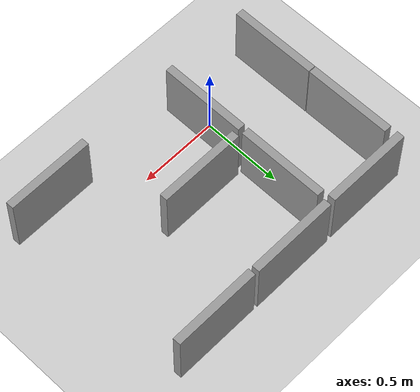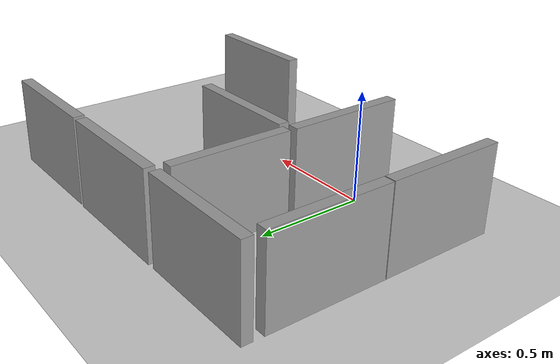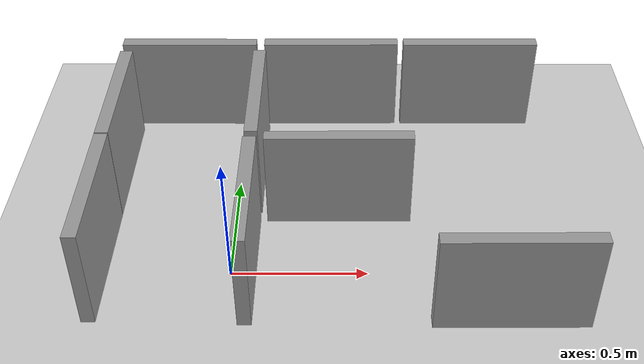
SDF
<sdf version="1.6">
 <world name="default">
  <model name="ground_plane">
   <static>1</static>
   <link name="link">
    <collision name="collision">
     <geometry><plane><normal>0 0 1</normal><size>100 100</size></plane></geometry>
     <surface>
      <contact><collide_bitmask>65535</collide_bitmask></contact>
      <friction><ode><mu>100</mu><mu2>50</mu2></ode></friction>
     </surface>
    </collision>
    <visual name="visual">
     <cast_shadows>0</cast_shadows>
     <geometry><plane><normal>0 0 1</normal><size>100 100</size></plane></geometry>
     <material>
      <script><uri>file://media/materials/scripts/gazebo.material</uri><name>Gazebo/Grey</name></script>
     </material>
    </visual>
   </link>
  </model>
  <model name="Maze_unit_clone_0">
   <link name="link">
    <inertial>
     <mass>1</mass>
     <inertia>
      <ixx>0.166667</ixx>
      <ixy>0</ixy>
      <ixz>0</ixz>
      <iyy>0.166667</iyy>
      <iyz>0</iyz>
      <izz>0.166667</izz>
     </inertia>
    </inertial>
    <pose>-0.463146 -0.530916 -0 0 -0 0</pose>
    <visual name="visual">
     <geometry><box><size>0.05 0.55 0.4</size></box></geometry>
     <material>
      <script><name>Gazebo/Grey</name><uri>file://media/materials/scripts/gazebo.material</uri></script>
      <shader type="vertex"><normal_map>__default__</normal_map></shader>
      <ambient>0.3 0.3 0.3 1</ambient>
      <diffuse>0.7 0.7 0.7 1</diffuse>
      <specular>0.01 0.01 0.01 1</specular>
      <emissive>0 0 0 1</emissive>
     </material>
    </visual>
    <collision name="collision">
     <geometry><box><size>0.05 0.55 0.4</size></box></geometry>
     <surface>
      <friction>
       <ode><mu>1</mu><mu2>1</mu2><fdir1>0 0 0</fdir1><slip1>0</slip1><slip2>0</slip2></ode>
       <torsional>
        <coefficient>1</coefficient>
        <patch_radius>0</patch_radius>
        <surface_radius>0</surface_radius>
        <use_patch_radius>1</use_patch_radius>
        <ode><slip>0</slip></ode>
       </torsional>
      </friction>
      <bounce><restitution_coefficient>0</restitution_coefficient><threshold>1e+06</threshold></bounce>
      <contact>
       <collide_without_contact>0</collide_without_contact>
       <collide_without_contact_bitmask>1</collide_without_contact_bitmask>
       <collide_bitmask>1</collide_bitmask>
       <ode>
        <soft_cfm>0</soft_cfm>
        <soft_erp>0.2</soft_erp>
        <kp>1e+13</kp>
        <kd>1</kd>
        <max_vel>0.01</max_vel>
        <min_depth>0</min_depth>
       </ode>
       <bullet>
        <split_impulse>1</split_impulse>
        <split_impulse_penetration_threshold>-0.01</split_impulse_penetration_threshold>
        <soft_cfm>0</soft_cfm>
        <soft_erp>0.2</soft_erp>
        <kp>1e+13</kp>
        <kd>1</kd>
       </bullet>
      </contact>
     </surface>
    </collision>
   </link>
   <static>1</static>
   <pose>-0.010054 0.572677 0.2 1e-06 1e-06 -0.00027</pose>
  </model>
  <model name="Maze_unit_clone_1">
   <link name="link">
    <inertial>
     <mass>1</mass>
     <inertia>
      <ixx>0.166667</ixx>
      <ixy>0</ixy>
      <ixz>0</ixz>
      <iyy>0.166667</iyy>
      <iyz>0</iyz>
      <izz>0.166667</izz>
     </inertia>
    </inertial>
    <pose>-0.463146 -0.530916 -0 0 -0 0</pose>
    <visual name="visual">
     <geometry><box><size>0.05 0.55 0.4</size></box></geometry>
     <material>
      <script><name>Gazebo/Grey</name><uri>file://media/materials/scripts/gazebo.material</uri></script>
      <shader type="vertex"><normal_map>__default__</normal_map></shader>
      <ambient>0.3 0.3 0.3 1</ambient>
      <diffuse>0.7 0.7 0.7 1</diffuse>
      <specular>0.01 0.01 0.01 1</specular>
      <emissive>0 0 0 1</emissive>
     </material>
    </visual>
    <collision name="collision">
     <geometry><box><size>0.05 0.55 0.4</size></box></geometry>
     <surface>
      <friction>
       <ode><mu>1</mu><mu2>1</mu2><fdir1>0 0 0</fdir1><slip1>0</slip1><slip2>0</slip2></ode>
       <torsional>
        <coefficient>1</coefficient>
        <patch_radius>0</patch_radius>
        <surface_radius>0</surface_radius>
        <use_patch_radius>1</use_patch_radius>
        <ode><slip>0</slip></ode>
       </torsional>
      </friction>
      <bounce><restitution_coefficient>0</restitution_coefficient><threshold>1e+06</threshold></bounce>
      <contact>
       <collide_without_contact>0</collide_without_contact>
       <collide_without_contact_bitmask>1</collide_without_contact_bitmask>
       <collide_bitmask>1</collide_bitmask>
       <ode>
        <soft_cfm>0</soft_cfm>
        <soft_erp>0.2</soft_erp>
        <kp>1e+13</kp>
        <kd>1</kd>
        <max_vel>0.01</max_vel>
        <min_depth>0</min_depth>
       </ode>
       <bullet>
        <split_impulse>1</split_impulse>
        <split_impulse_penetration_threshold>-0.01</split_impulse_penetration_threshold>
        <soft_cfm>0</soft_cfm>
        <soft_erp>0.2</soft_erp>
        <kp>1e+13</kp>
        <kd>1</kd>
       </bullet>
      </contact>
     </surface>
    </collision>
   </link>
   <static>1</static>
   <pose>-0.010091 1.1268 0.2 0 0 -0.000544</pose>
  </model>
  <model name="Maze_unit_clone_3">
   <link name="link">
    <inertial>
     <mass>1</mass>
     <inertia>
      <ixx>0.166667</ixx>
      <ixy>0</ixy>
      <ixz>0</ixz>
      <iyy>0.166667</iyy>
      <iyz>0</iyz>
      <izz>0.166667</izz>
     </inertia>
    </inertial>
    <pose>-0.463146 -0.530916 -0 0 -0 0</pose>
    <visual name="visual">
     <geometry><box><size>0.05 0.55 0.4</size></box></geometry>
     <material>
      <script><name>Gazebo/Grey</name><uri>file://media/materials/scripts/gazebo.material</uri></script>
      <shader type="vertex"><normal_map>__default__</normal_map></shader>
      <ambient>0.3 0.3 0.3 1</ambient>
      <diffuse>0.7 0.7 0.7 1</diffuse>
      <specular>0.01 0.01 0.01 1</specular>
      <emissive>0 0 0 1</emissive>
     </material>
    </visual>
    <collision name="collision">
     <geometry><box><size>0.05 0.55 0.4</size></box></geometry>
     <surface>
      <friction>
       <ode><mu>1</mu><mu2>1</mu2><fdir1>0 0 0</fdir1><slip1>0</slip1><slip2>0</slip2></ode>
       <torsional>
        <coefficient>1</coefficient>
        <patch_radius>0</patch_radius>
        <surface_radius>0</surface_radius>
        <use_patch_radius>1</use_patch_radius>
        <ode><slip>0</slip></ode>
       </torsional>
      </friction>
      <bounce><restitution_coefficient>0</restitution_coefficient><threshold>1e+06</threshold></bounce>
      <contact>
       <collide_without_contact>0</collide_without_contact>
       <collide_without_contact_bitmask>1</collide_without_contact_bitmask>
       <collide_bitmask>1</collide_bitmask>
       <ode>
        <soft_cfm>0</soft_cfm>
        <soft_erp>0.2</soft_erp>
        <kp>1e+13</kp>
        <kd>1</kd>
        <max_vel>0.01</max_vel>
        <min_depth>0</min_depth>
       </ode>
       <bullet>
        <split_impulse>1</split_impulse>
        <split_impulse_penetration_threshold>-0.01</split_impulse_penetration_threshold>
        <soft_cfm>0</soft_cfm>
        <soft_erp>0.2</soft_erp>
        <kp>1e+13</kp>
        <kd>1</kd>
       </bullet>
      </contact>
     </surface>
    </collision>
   </link>
   <static>1</static>
   <pose>0.530974 0.559352 0.2 0 -0 0.000106</pose>
  </model>
  <model name="Maze_unit_clone_4">
   <link name="link">
    <inertial>
     <mass>1</mass>
     <inertia>
      <ixx>0.166667</ixx>
      <ixy>0</ixy>
      <ixz>0</ixz>
      <iyy>0.166667</iyy>
      <iyz>0</iyz>
      <izz>0.166667</izz>
     </inertia>
    </inertial>
    <pose>-0.463146 -0.530916 -0 0 -0 0</pose>
    <visual name="visual">
     <geometry><box><size>0.05 0.55 0.4</size></box></geometry>
     <material>
      <script><name>Gazebo/Grey</name><uri>file://media/materials/scripts/gazebo.material</uri></script>
      <shader type="vertex"><normal_map>__default__</normal_map></shader>
      <ambient>0.3 0.3 0.3 1</ambient>
      <diffuse>0.7 0.7 0.7 1</diffuse>
      <specular>0.01 0.01 0.01 1</specular>
      <emissive>0 0 0 1</emissive>
     </material>
    </visual>
    <collision name="collision">
     <geometry><box><size>0.05 0.55 0.4</size></box></geometry>
     <surface>
      <friction>
       <ode><mu>1</mu><mu2>1</mu2><fdir1>0 0 0</fdir1><slip1>0</slip1><slip2>0</slip2></ode>
       <torsional>
        <coefficient>1</coefficient>
        <patch_radius>0</patch_radius>
        <surface_radius>0</surface_radius>
        <use_patch_radius>1</use_patch_radius>
        <ode><slip>0</slip></ode>
       </torsional>
      </friction>
      <bounce><restitution_coefficient>0</restitution_coefficient><threshold>1e+06</threshold></bounce>
      <contact>
       <collide_without_contact>0</collide_without_contact>
       <collide_without_contact_bitmask>1</collide_without_contact_bitmask>
       <collide_bitmask>1</collide_bitmask>
       <ode>
        <soft_cfm>0</soft_cfm>
        <soft_erp>0.2</soft_erp>
        <kp>1e+13</kp>
        <kd>1</kd>
        <max_vel>0.01</max_vel>
        <min_depth>0</min_depth>
       </ode>
       <bullet>
        <split_impulse>1</split_impulse>
        <split_impulse_penetration_threshold>-0.01</split_impulse_penetration_threshold>
        <soft_cfm>0</soft_cfm>
        <soft_erp>0.2</soft_erp>
        <kp>1e+13</kp>
        <kd>1</kd>
       </bullet>
      </contact>
     </surface>
    </collision>
   </link>
   <static>1</static>
   <pose>0.53227 1.1388 0.199993 -9e-06 -0 0.001029</pose>
  </model>
  <model name="Maze_unit_clone_5_clone_3">
   <link name="link">
    <inertial>
     <mass>1</mass>
     <inertia>
      <ixx>0.166667</ixx>
      <ixy>0</ixy>
      <ixz>0</ixz>
      <iyy>0.166667</iyy>
      <iyz>0</iyz>
      <izz>0.166667</izz>
     </inertia>
    </inertial>
    <pose>-0.463146 -0.530916 -0 0 -0 0</pose>
    <visual name="visual">
     <geometry><box><size>0.05 0.55 0.4</size></box></geometry>
     <material>
      <script><name>Gazebo/Grey</name><uri>file://media/materials/scripts/gazebo.material</uri></script>
      <shader type="vertex"><normal_map>__default__</normal_map></shader>
      <ambient>0.3 0.3 0.3 1</ambient>
      <diffuse>0.7 0.7 0.7 1</diffuse>
      <specular>0.01 0.01 0.01 1</specular>
      <emissive>0 0 0 1</emissive>
     </material>
    </visual>
    <collision name="collision">
     <geometry><box><size>0.05 0.55 0.4</size></box></geometry>
     <surface>
      <friction>
       <ode><mu>1</mu><mu2>1</mu2><fdir1>0 0 0</fdir1><slip1>0</slip1><slip2>0</slip2></ode>
       <torsional>
        <coefficient>1</coefficient>
        <patch_radius>0</patch_radius>
        <surface_radius>0</surface_radius>
        <use_patch_radius>1</use_patch_radius>
        <ode><slip>0</slip></ode>
       </torsional>
      </friction>
      <bounce><restitution_coefficient>0</restitution_coefficient><threshold>1e+06</threshold></bounce>
      <contact>
       <collide_without_contact>0</collide_without_contact>
       <collide_without_contact_bitmask>1</collide_without_contact_bitmask>
       <collide_bitmask>1</collide_bitmask>
       <ode>
        <soft_cfm>0</soft_cfm>
        <soft_erp>0.2</soft_erp>
        <kp>1e+13</kp>
        <kd>1</kd>
        <max_vel>0.01</max_vel>
        <min_depth>0</min_depth>
       </ode>
       <bullet>
        <split_impulse>1</split_impulse>
        <split_impulse_penetration_threshold>-0.01</split_impulse_penetration_threshold>
        <soft_cfm>0</soft_cfm>
        <soft_erp>0.2</soft_erp>
        <kp>1e+13</kp>
        <kd>1</kd>
       </bullet>
      </contact>
     </surface>
    </collision>
   </link>
   <static>1</static>
   <pose>-0.752801 1.40494 0.2 0 1e-06 1.57111</pose>
  </model>
  <model name="Maze_unit_clone_5_clone_4">
   <link name="link">
    <inertial>
     <mass>1</mass>
     <inertia>
      <ixx>0.166667</ixx>
      <ixy>0</ixy>
      <ixz>0</ixz>
      <iyy>0.166667</iyy>
      <iyz>0</iyz>
      <izz>0.166667</izz>
     </inertia>
    </inertial>
    <pose>-0.463146 -0.530916 -0 0 -0 0</pose>
    <visual name="visual">
     <geometry><box><size>0.05 0.55 0.4</size></box></geometry>
     <material>
      <script><name>Gazebo/Grey</name><uri>file://media/materials/scripts/gazebo.material</uri></script>
      <shader type="vertex"><normal_map>__default__</normal_map></shader>
      <ambient>0.3 0.3 0.3 1</ambient>
      <diffuse>0.7 0.7 0.7 1</diffuse>
      <specular>0.01 0.01 0.01 1</specular>
      <emissive>0 0 0 1</emissive>
     </material>
    </visual>
    <collision name="collision">
     <geometry><box><size>0.05 0.55 0.4</size></box></geometry>
     <surface>
      <friction>
       <ode><mu>1</mu><mu2>1</mu2><fdir1>0 0 0</fdir1><slip1>0</slip1><slip2>0</slip2></ode>
       <torsional>
        <coefficient>1</coefficient>
        <patch_radius>0</patch_radius>
        <surface_radius>0</surface_radius>
        <use_patch_radius>1</use_patch_radius>
        <ode><slip>0</slip></ode>
       </torsional>
      </friction>
      <bounce><restitution_coefficient>0</restitution_coefficient><threshold>1e+06</threshold></bounce>
      <contact>
       <collide_without_contact>0</collide_without_contact>
       <collide_without_contact_bitmask>1</collide_without_contact_bitmask>
       <collide_bitmask>1</collide_bitmask>
       <ode>
        <soft_cfm>0</soft_cfm>
        <soft_erp>0.2</soft_erp>
        <kp>1e+13</kp>
        <kd>1</kd>
        <max_vel>0.01</max_vel>
        <min_depth>0</min_depth>
       </ode>
       <bullet>
        <split_impulse>1</split_impulse>
        <split_impulse_penetration_threshold>-0.01</split_impulse_penetration_threshold>
        <soft_cfm>0</soft_cfm>
        <soft_erp>0.2</soft_erp>
        <kp>1e+13</kp>
        <kd>1</kd>
       </bullet>
      </contact>
     </surface>
    </collision>
   </link>
   <static>1</static>
   <pose>-0.172312 1.40639 0.2 0 -0 1.57606</pose>
  </model>
  <model name="Maze_unit_clone_5_clone_5">
   <link name="link">
    <inertial>
     <mass>1</mass>
     <inertia>
      <ixx>0.166667</ixx>
      <ixy>0</ixy>
      <ixz>0</ixz>
      <iyy>0.166667</iyy>
      <iyz>0</iyz>
      <izz>0.166667</izz>
     </inertia>
    </inertial>
    <pose>-0.463146 -0.530916 -0 0 -0 0</pose>
    <visual name="visual">
     <geometry><box><size>0.05 0.55 0.4</size></box></geometry>
     <material>
      <script><name>Gazebo/Grey</name><uri>file://media/materials/scripts/gazebo.material</uri></script>
      <shader type="vertex"><normal_map>__default__</normal_map></shader>
      <ambient>0.3 0.3 0.3 1</ambient>
      <diffuse>0.7 0.7 0.7 1</diffuse>
      <specular>0.01 0.01 0.01 1</specular>
      <emissive>0 0 0 1</emissive>
     </material>
    </visual>
    <collision name="collision">
     <geometry><box><size>0.05 0.55 0.4</size></box></geometry>
     <surface>
      <friction>
       <ode><mu>1</mu><mu2>1</mu2><fdir1>0 0 0</fdir1><slip1>0</slip1><slip2>0</slip2></ode>
       <torsional>
        <coefficient>1</coefficient>
        <patch_radius>0</patch_radius>
        <surface_radius>0</surface_radius>
        <use_patch_radius>1</use_patch_radius>
        <ode><slip>0</slip></ode>
       </torsional>
      </friction>
      <bounce><restitution_coefficient>0</restitution_coefficient><threshold>1e+06</threshold></bounce>
      <contact>
       <collide_without_contact>0</collide_without_contact>
       <collide_without_contact_bitmask>1</collide_without_contact_bitmask>
       <collide_bitmask>1</collide_bitmask>
       <ode>
        <soft_cfm>0</soft_cfm>
        <soft_erp>0.2</soft_erp>
        <kp>1e+13</kp>
        <kd>1</kd>
        <max_vel>0.01</max_vel>
        <min_depth>0</min_depth>
       </ode>
       <bullet>
        <split_impulse>1</split_impulse>
        <split_impulse_penetration_threshold>-0.01</split_impulse_penetration_threshold>
        <soft_cfm>0</soft_cfm>
        <soft_erp>0.2</soft_erp>
        <kp>1e+13</kp>
        <kd>1</kd>
       </bullet>
      </contact>
     </surface>
    </collision>
   </link>
   <static>1</static>
   <pose>0.401259 1.40639 0.200002 9e-06 -0 1.57639</pose>
  </model>
  <model name="Maze_unit_clone_5_clone_8">
   <link name="link">
    <inertial>
     <mass>1</mass>
     <inertia>
      <ixx>0.166667</ixx>
      <ixy>0</ixy>
      <ixz>0</ixz>
      <iyy>0.166667</iyy>
      <iyz>0</iyz>
      <izz>0.166667</izz>
     </inertia>
    </inertial>
    <pose>-0.463146 -0.530916 -0 0 -0 0</pose>
    <visual name="visual">
     <geometry><box><size>0.05 0.55 0.4</size></box></geometry>
     <material>
      <script><name>Gazebo/Grey</name><uri>file://media/materials/scripts/gazebo.material</uri></script>
      <shader type="vertex"><normal_map>__default__</normal_map></shader>
      <ambient>0.3 0.3 0.3 1</ambient>
      <diffuse>0.7 0.7 0.7 1</diffuse>
      <specular>0.01 0.01 0.01 1</specular>
      <emissive>0 0 0 1</emissive>
     </material>
    </visual>
    <collision name="collision">
     <geometry><box><size>0.05 0.55 0.4</size></box></geometry>
     <surface>
      <friction>
       <ode><mu>1</mu><mu2>1</mu2><fdir1>0 0 0</fdir1><slip1>0</slip1><slip2>0</slip2></ode>
       <torsional>
        <coefficient>1</coefficient>
        <patch_radius>0</patch_radius>
        <surface_radius>0</surface_radius>
        <use_patch_radius>1</use_patch_radius>
        <ode><slip>0</slip></ode>
       </torsional>
      </friction>
      <bounce><restitution_coefficient>0</restitution_coefficient><threshold>1e+06</threshold></bounce>
      <contact>
       <collide_without_contact>0</collide_without_contact>
       <collide_without_contact_bitmask>1</collide_without_contact_bitmask>
       <collide_bitmask>1</collide_bitmask>
       <ode>
        <soft_cfm>0</soft_cfm>
        <soft_erp>0.2</soft_erp>
        <kp>1e+13</kp>
        <kd>1</kd>
        <max_vel>0.01</max_vel>
        <min_depth>0</min_depth>
       </ode>
       <bullet>
        <split_impulse>1</split_impulse>
        <split_impulse_penetration_threshold>-0.01</split_impulse_penetration_threshold>
        <soft_cfm>0</soft_cfm>
        <soft_erp>0.2</soft_erp>
        <kp>1e+13</kp>
        <kd>1</kd>
       </bullet>
      </contact>
     </surface>
    </collision>
   </link>
   <static>1</static>
   <pose>-0.139607 0.769956 0.2 1e-06 1e-06 1.57661</pose>
  </model>
  <model name="Maze_unit_clone_5_clone_10">
   <link name="link">
    <inertial>
     <mass>1</mass>
     <inertia>
      <ixx>0.166667</ixx>
      <ixy>0</ixy>
      <ixz>0</ixz>
      <iyy>0.166667</iyy>
      <iyz>0</iyz>
      <izz>0.166667</izz>
     </inertia>
    </inertial>
    <pose>-0.463146 -0.530916 -0 0 -0 0</pose>
    <visual name="visual">
     <geometry><box><size>0.05 0.55 0.4</size></box></geometry>
     <material>
      <script><name>Gazebo/Grey</name><uri>file://media/materials/scripts/gazebo.material</uri></script>
      <shader type="vertex"><normal_map>__default__</normal_map></shader>
      <ambient>0.3 0.3 0.3 1</ambient>
      <diffuse>0.7 0.7 0.7 1</diffuse>
      <specular>0.01 0.01 0.01 1</specular>
      <emissive>0 0 0 1</emissive>
     </material>
    </visual>
    <collision name="collision">
     <geometry><box><size>0.05 0.55 0.4</size></box></geometry>
     <surface>
      <friction>
       <ode><mu>1</mu><mu2>1</mu2><fdir1>0 0 0</fdir1><slip1>0</slip1><slip2>0</slip2></ode>
       <torsional>
        <coefficient>1</coefficient>
        <patch_radius>0</patch_radius>
        <surface_radius>0</surface_radius>
        <use_patch_radius>1</use_patch_radius>
        <ode><slip>0</slip></ode>
       </torsional>
      </friction>
      <bounce><restitution_coefficient>0</restitution_coefficient><threshold>1e+06</threshold></bounce>
      <contact>
       <collide_without_contact>0</collide_without_contact>
       <collide_without_contact_bitmask>1</collide_without_contact_bitmask>
       <collide_bitmask>1</collide_bitmask>
       <ode>
        <soft_cfm>0</soft_cfm>
        <soft_erp>0.2</soft_erp>
        <kp>1e+13</kp>
        <kd>1</kd>
        <max_vel>0.01</max_vel>
        <min_depth>0</min_depth>
       </ode>
       <bullet>
        <split_impulse>1</split_impulse>
        <split_impulse_penetration_threshold>-0.01</split_impulse_penetration_threshold>
        <soft_cfm>0</soft_cfm>
        <soft_erp>0.2</soft_erp>
        <kp>1e+13</kp>
        <kd>1</kd>
       </bullet>
      </contact>
     </surface>
    </collision>
   </link>
   <static>1</static>
   <pose>0.456644 0.230425 0.200001 0 -2e-06 1.5765</pose>
  </model>
 </world>
</sdf>
